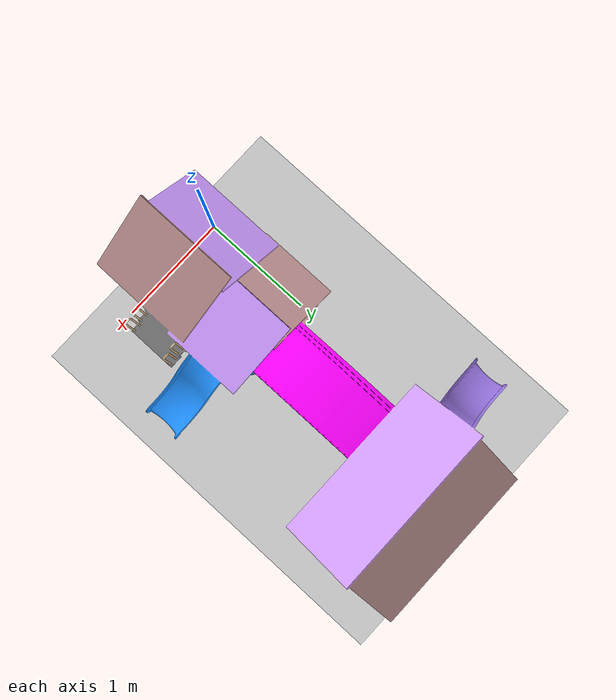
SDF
<?xml version='1.0' encoding='utf-8'?>
<sdf version="1.6">
  <world name="default">
    <!-- A Custom light source -->
    <light type="directional" name="light_source" cast_shadows="false">
      <origin pose="0 0 30 0 0 0"/>
      <diffuse rgba=".9 .9 .9 1"/>
      <specular rgba=".1 .1 .1 1"/>
      <attenuation range="20"/>
      <direction xyz="0 0 -1"/>
    </light>
    <!-- A ground plane -->
    <include>
      <uri>model://ground_plane</uri>
    </include>
    <!-- Declaring Physics in Gazebo-->
    <gravity>0 0 -9.8</gravity>
    <physics type="ode">
      <real_time_update_rate>1000.0</real_time_update_rate>
      <max_step_size>0.001</max_step_size>
      <real_time_factor>1</real_time_factor>
      <ode>
        <solver>
          <type>quick</type>
          <iters>150</iters>
          <precon_iters>0</precon_iters>
          <sor>1.400000</sor>
          <use_dynamic_moi_rescaling>1</use_dynamic_moi_rescaling>
        </solver>
        <constraints>
          <cfm>0.00001</cfm>
          <erp>0.2</erp>
          <contact_max_correcting_vel>2000.000000</contact_max_correcting_vel>
          <contact_surface_layer>0.01000</contact_surface_layer>
        </constraints>
      </ode>
    </physics>
    <!-- Importing the arena in Gazebo -->
    <model name="playground">
      <include>
        <uri>model://playground</uri>
        <static>true</static>
      </include>
      <pose frame="">0 0 0.01 0 0 0</pose>
      <static>true</static>
    </model>

    <gui fullscreen='0'>
      <camera name='user_camera'>
        <pose frame=''>-2.75 4.19 5.15 0.0 0.72 -0.99</pose>
        <view_controller>orbit</view_controller>
        <projection_type>perspective</projection_type>
      </camera>
    </gui>

  </world>
</sdf>

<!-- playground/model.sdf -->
<sdf version="1.5">
  <model name="playground">
    <static>true</static>
    <link name="link">
      <collision name="box">
        <pose>0 0 0.02 0 0 0</pose>
        <geometry>
          <mesh>
            <uri>model://playground/meshes/playground.dae</uri>
            <scale>0.01 0.01 0.01</scale>
          </mesh>
        </geometry>
      </collision>
      <visual name="visual">
        <pose>0 0 0.02 0 0 0</pose>
        <geometry>
          <mesh>
            <uri>model://playground/meshes/playground.dae</uri>
            <scale>0.01 0.01 0.01</scale>
          </mesh>
        </geometry>
      </visual>
    </link>
  </model>
</sdf>
